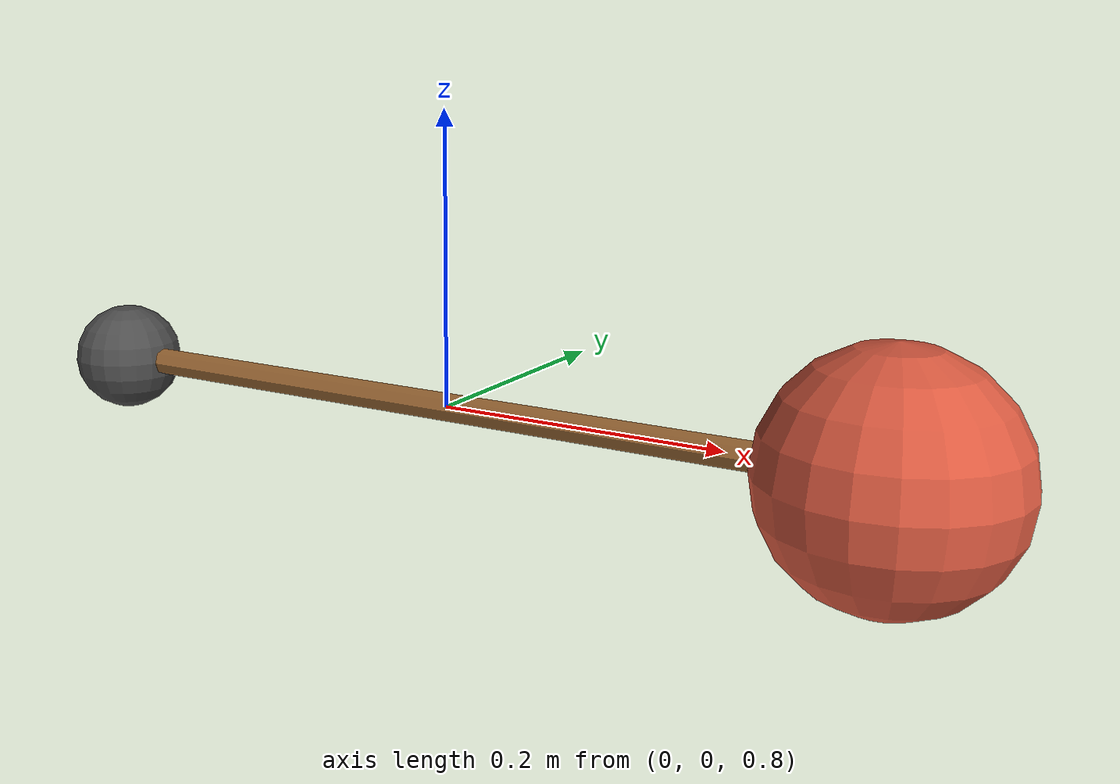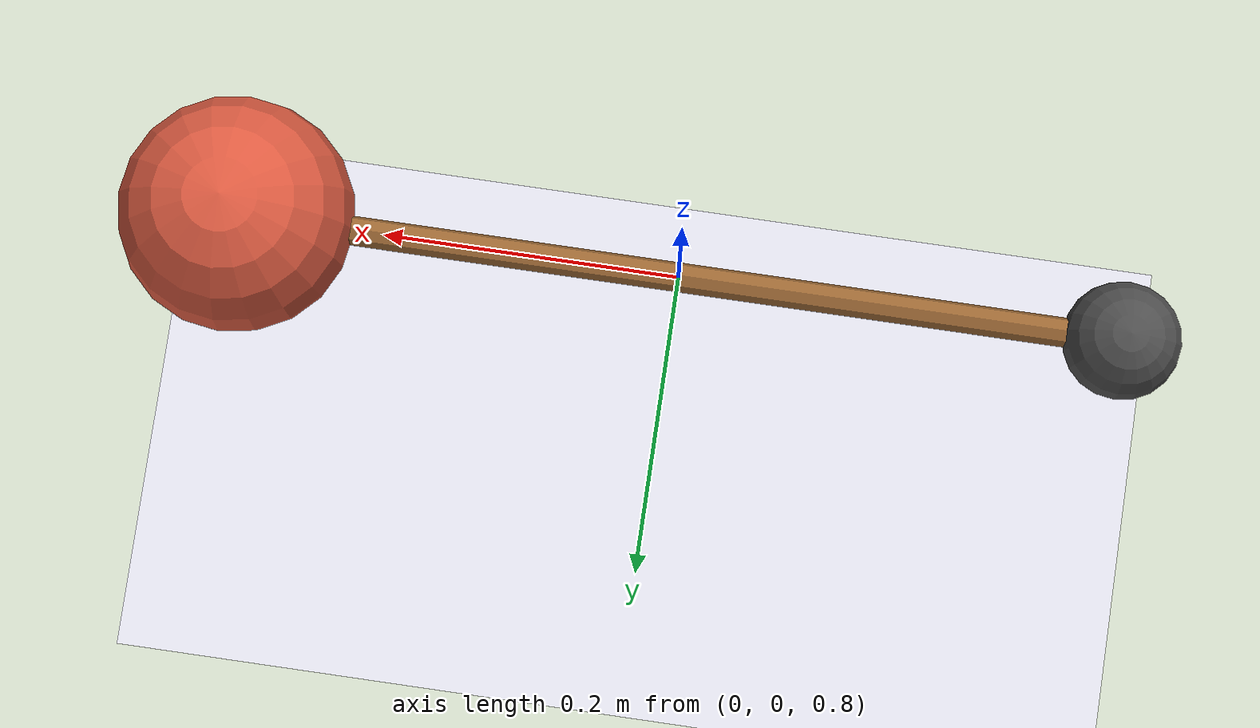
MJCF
<mujoco model="tendon_demo">
  <option timestep="0.002" gravity="0 0 -9.81"/>
  <visual><global offwidth="640" offheight="480"/></visual>
  <worldbody>
    <light pos="0 0 2" dir="0 0 -1"/>
    <geom type="plane" size="2 2 0.01" rgba="0.88 0.88 0.92 1"/>
    <body name="anchor_a" pos="-0.3 0 0.8">
      <geom type="sphere" size="0.04" rgba="0.3 0.3 0.3 1"/>
      <site name="sa" pos="0 0 0"/>
    </body>
    <body name="pendulum" pos="0.3 0 0.8">
      <freejoint/>
      <geom type="sphere" size="0.08" rgba="0.85 0.35 0.25 1" mass="0.5"/>
      <site name="sp" pos="0 0 0"/>
    </body>
  </worldbody>
  <tendon>
    <spatial name="rope" width="0.01" rgba="0.6 0.4 0.2 1">
      <site site="sa"/>
      <site site="sp"/>
    </spatial>
  </tendon>
  <worldbody>
    <camera name="cam" pos="1.4 -1.0 0.9" xyaxes="0.6 0.8 0 -0.3 0.25 0.92"/>
  </worldbody>
</mujoco>
